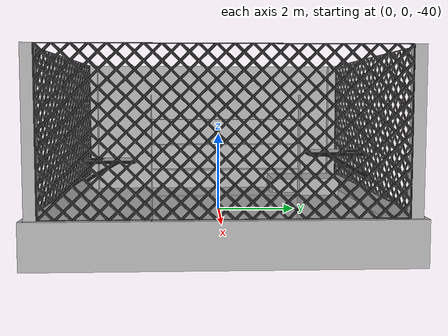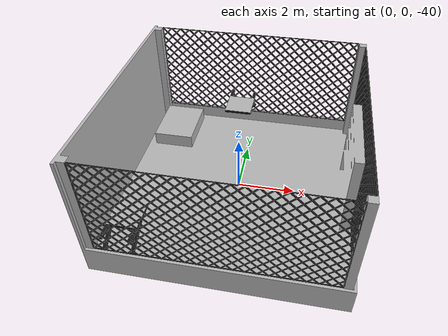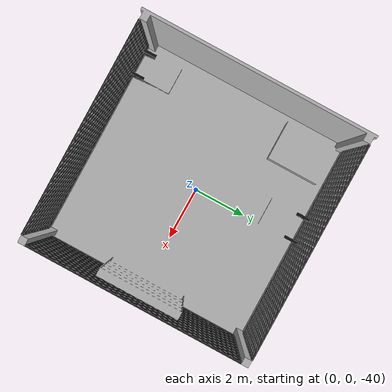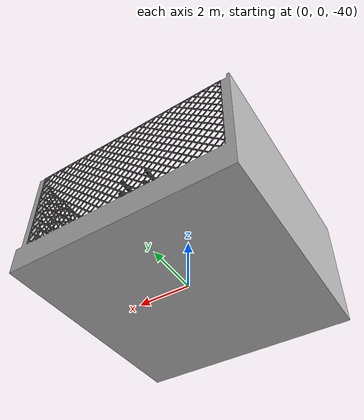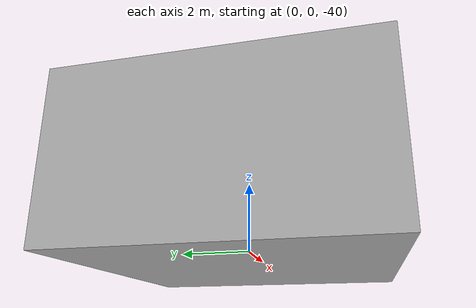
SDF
<?xml version="1.0" encoding="UTF-8"?>
<sdf version="1.6">
  <model name="cagemodel">
    <pose>0 0 -40 0 0 0</pose>
    <static>true</static>

    <link name="cagelink">
      <visual name="visual">
        <geometry>
          <mesh>
            <uri>model://cage/meshes/cage.dae</uri>
          </mesh>
        </geometry>
      </visual>
      <collision name="collision">
        <geometry>
          <mesh>
            <uri>model://cage/meshes/cage.dae</uri>
          </mesh>
        </geometry>
      </collision>
    </link>
  </model>
</sdf>
